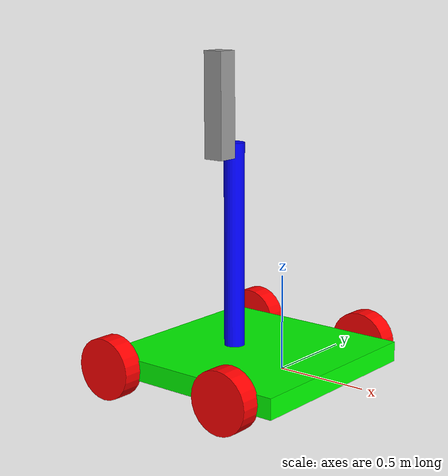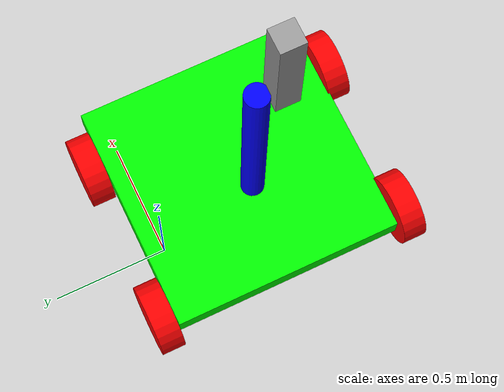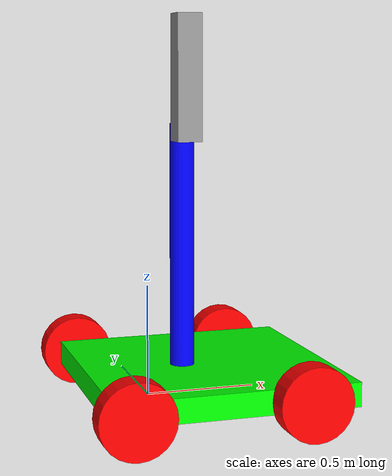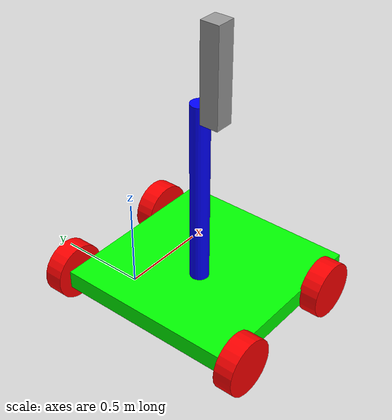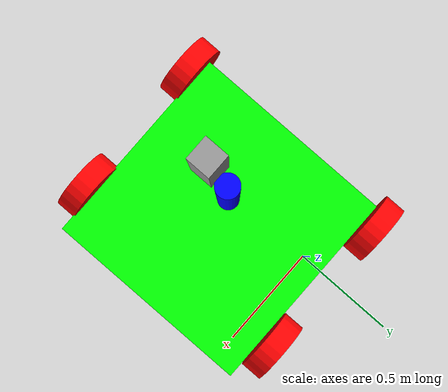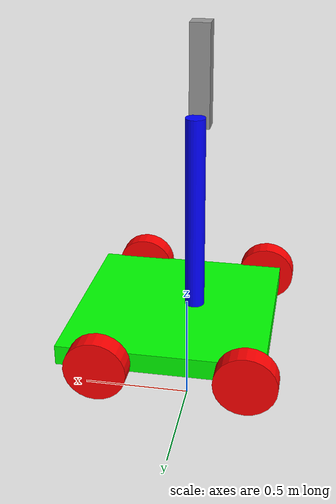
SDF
<?xml version='1.0'?>
<sdf version='1.6'>
  <model name='mybot'>
    <link name='link_2_clone_0'>
      <pose frame=''>0.401 0.150014 0.2 1.5707 -0 0</pose>
      <inertial>
        <mass>1</mass>
        <inertia>
          <ixx>0.145833</ixx>
          <ixy>0</ixy>
          <ixz>0</ixz>
          <iyy>0.145833</iyy>
          <iyz>0</iyz>
          <izz>0.125</izz>
        </inertia>
        <pose frame=''>0 0 0 0 -0 0</pose>
      </inertial>
      <self_collide>0</self_collide>
      <kinematic>0</kinematic>
      <visual name='visual'>
        <pose frame=''>0 0 0 0 -0 0</pose>
        <geometry>
          <cylinder>
            <radius>0.15</radius>
            <length>0.1</length>
          </cylinder>
        </geometry>
        <material>
          <lighting>1</lighting>
          <script>
            <uri>file://media/materials/scripts/gazebo.material</uri>
            <name>Gazebo/Grey</name>
          </script>
          <shader type='pixel'>
            <normal_map>__default__</normal_map>
          </shader>
          <ambient>0.3 0.3 0.3 1</ambient>
          <diffuse>1 0 0 1</diffuse>
          <specular>1 0 0 1</specular>
          <emissive>0 0 0 1</emissive>
        </material>
        <transparency>0</transparency>
        <cast_shadows>1</cast_shadows>
      </visual>
      <collision name='collision'>
        <laser_retro>0</laser_retro>
        <max_contacts>10</max_contacts>
        <pose frame=''>0 0 0 0 -0 0</pose>
        <geometry>
          <cylinder>
            <radius>0.15</radius>
            <length>0.1</length>
          </cylinder>
        </geometry>
        <surface>
          <friction>
            <ode>
              <mu>1</mu>
              <mu2>1</mu2>
              <fdir1>0 0 0</fdir1>
              <slip1>0</slip1>
              <slip2>0</slip2>
            </ode>
            <torsional>
              <coefficient>1</coefficient>
              <patch_radius>0</patch_radius>
              <surface_radius>0</surface_radius>
              <use_patch_radius>1</use_patch_radius>
              <ode>
                <slip>0</slip>
              </ode>
            </torsional>
          </friction>
          <bounce>
            <restitution_coefficient>0</restitution_coefficient>
            <threshold>1e+06</threshold>
          </bounce>
          <contact>
            <collide_without_contact>0</collide_without_contact>
            <collide_without_contact_bitmask>1</collide_without_contact_bitmask>
            <collide_bitmask>1</collide_bitmask>
            <ode>
              <soft_cfm>0</soft_cfm>
              <soft_erp>0.2</soft_erp>
              <kp>1e+13</kp>
              <kd>1</kd>
              <max_vel>0.01</max_vel>
              <min_depth>0</min_depth>
            </ode>
            <bullet>
              <split_impulse>1</split_impulse>
              <split_impulse_penetration_threshold>-0.01</split_impulse_penetration_threshold>
              <soft_cfm>0</soft_cfm>
              <soft_erp>0.2</soft_erp>
              <kp>1e+13</kp>
              <kd>1</kd>
            </bullet>
          </contact>
        </surface>
      </collision>
    </link>
    <link name='link_2_clone_0_clone'>
      <pose frame=''>-0.299 0.150014 0.2 1.5707 -0 0</pose>
      <inertial>
        <mass>1</mass>
        <inertia>
          <ixx>0.145833</ixx>
          <ixy>0</ixy>
          <ixz>0</ixz>
          <iyy>0.145833</iyy>
          <iyz>0</iyz>
          <izz>0.125</izz>
        </inertia>
        <pose frame=''>0 0 0 0 -0 0</pose>
      </inertial>
      <self_collide>0</self_collide>
      <kinematic>0</kinematic>
      <visual name='visual'>
        <pose frame=''>0 0 0 0 -0 0</pose>
        <geometry>
          <cylinder>
            <radius>0.15</radius>
            <length>0.1</length>
          </cylinder>
        </geometry>
        <material>
          <lighting>1</lighting>
          <script>
            <uri>file://media/materials/scripts/gazebo.material</uri>
            <name>Gazebo/Grey</name>
          </script>
          <shader type='pixel'>
            <normal_map>__default__</normal_map>
          </shader>
          <ambient>0.3 0.3 0.3 1</ambient>
          <diffuse>1 0 0 1</diffuse>
          <specular>1 0 0 1</specular>
          <emissive>0 0 0 1</emissive>
        </material>
        <transparency>0</transparency>
        <cast_shadows>1</cast_shadows>
      </visual>
      <collision name='collision'>
        <laser_retro>0</laser_retro>
        <max_contacts>10</max_contacts>
        <pose frame=''>0 0 0 0 -0 0</pose>
        <geometry>
          <cylinder>
            <radius>0.15</radius>
            <length>0.1</length>
          </cylinder>
        </geometry>
        <surface>
          <friction>
            <ode>
              <mu>1</mu>
              <mu2>1</mu2>
              <fdir1>0 0 0</fdir1>
              <slip1>0</slip1>
              <slip2>0</slip2>
            </ode>
            <torsional>
              <coefficient>1</coefficient>
              <patch_radius>0</patch_radius>
              <surface_radius>0</surface_radius>
              <use_patch_radius>1</use_patch_radius>
              <ode>
                <slip>0</slip>
              </ode>
            </torsional>
          </friction>
          <bounce>
            <restitution_coefficient>0</restitution_coefficient>
            <threshold>1e+06</threshold>
          </bounce>
          <contact>
            <collide_without_contact>0</collide_without_contact>
            <collide_without_contact_bitmask>1</collide_without_contact_bitmask>
            <collide_bitmask>1</collide_bitmask>
            <ode>
              <soft_cfm>0</soft_cfm>
              <soft_erp>0.2</soft_erp>
              <kp>1e+13</kp>
              <kd>1</kd>
              <max_vel>0.01</max_vel>
              <min_depth>0</min_depth>
            </ode>
            <bullet>
              <split_impulse>1</split_impulse>
              <split_impulse_penetration_threshold>-0.01</split_impulse_penetration_threshold>
              <soft_cfm>0</soft_cfm>
              <soft_erp>0.2</soft_erp>
              <kp>1e+13</kp>
              <kd>1</kd>
            </bullet>
          </contact>
        </surface>
      </collision>
    </link>
    <link name='link_2_clone_0_clone_0'>
      <pose frame=''>-0.299 -0.950015 0.2 1.5707 -0 0</pose>
      <inertial>
        <mass>1</mass>
        <inertia>
          <ixx>0.145833</ixx>
          <ixy>0</ixy>
          <ixz>0</ixz>
          <iyy>0.145833</iyy>
          <iyz>0</iyz>
          <izz>0.125</izz>
        </inertia>
        <pose frame=''>0 0 0 0 -0 0</pose>
      </inertial>
      <self_collide>0</self_collide>
      <kinematic>0</kinematic>
      <visual name='visual'>
        <pose frame=''>0 0 0 0 -0 0</pose>
        <geometry>
          <cylinder>
            <radius>0.15</radius>
            <length>0.1</length>
          </cylinder>
        </geometry>
        <material>
          <lighting>1</lighting>
          <script>
            <uri>file://media/materials/scripts/gazebo.material</uri>
            <name>Gazebo/Grey</name>
          </script>
          <shader type='pixel'>
            <normal_map>__default__</normal_map>
          </shader>
          <ambient>0.3 0.3 0.3 1</ambient>
          <diffuse>1 0 0 1</diffuse>
          <specular>1 0 0 1</specular>
          <emissive>0 0 0 1</emissive>
        </material>
        <transparency>0</transparency>
        <cast_shadows>1</cast_shadows>
      </visual>
      <collision name='collision'>
        <laser_retro>0</laser_retro>
        <max_contacts>10</max_contacts>
        <pose frame=''>0 0 0 0 -0 0</pose>
        <geometry>
          <cylinder>
            <radius>0.15</radius>
            <length>0.1</length>
          </cylinder>
        </geometry>
        <surface>
          <friction>
            <ode>
              <mu>1</mu>
              <mu2>1</mu2>
              <fdir1>0 0 0</fdir1>
              <slip1>0</slip1>
              <slip2>0</slip2>
            </ode>
            <torsional>
              <coefficient>1</coefficient>
              <patch_radius>0</patch_radius>
              <surface_radius>0</surface_radius>
              <use_patch_radius>1</use_patch_radius>
              <ode>
                <slip>0</slip>
              </ode>
            </torsional>
          </friction>
          <bounce>
            <restitution_coefficient>0</restitution_coefficient>
            <threshold>1e+06</threshold>
          </bounce>
          <contact>
            <collide_without_contact>0</collide_without_contact>
            <collide_without_contact_bitmask>1</collide_without_contact_bitmask>
            <collide_bitmask>1</collide_bitmask>
            <ode>
              <soft_cfm>0</soft_cfm>
              <soft_erp>0.2</soft_erp>
              <kp>1e+13</kp>
              <kd>1</kd>
              <max_vel>0.01</max_vel>
              <min_depth>0</min_depth>
            </ode>
            <bullet>
              <split_impulse>1</split_impulse>
              <split_impulse_penetration_threshold>-0.01</split_impulse_penetration_threshold>
              <soft_cfm>0</soft_cfm>
              <soft_erp>0.2</soft_erp>
              <kp>1e+13</kp>
              <kd>1</kd>
            </bullet>
          </contact>
        </surface>
      </collision>
    </link>
    <link name='link_2_clone_0_clone_1'>
      <pose frame=''>0.401 -0.950015 0.2 1.5707 -0 0</pose>
      <inertial>
        <mass>1</mass>
        <inertia>
          <ixx>0.145833</ixx>
          <ixy>0</ixy>
          <ixz>0</ixz>
          <iyy>0.145833</iyy>
          <iyz>0</iyz>
          <izz>0.125</izz>
        </inertia>
        <pose frame=''>0 0 0 0 -0 0</pose>
      </inertial>
      <self_collide>0</self_collide>
      <kinematic>0</kinematic>
      <visual name='visual'>
        <pose frame=''>0 0 0 0 -0 0</pose>
        <geometry>
          <cylinder>
            <radius>0.15</radius>
            <length>0.1</length>
          </cylinder>
        </geometry>
        <material>
          <lighting>1</lighting>
          <script>
            <uri>file://media/materials/scripts/gazebo.material</uri>
            <name>Gazebo/Grey</name>
          </script>
          <shader type='pixel'>
            <normal_map>__default__</normal_map>
          </shader>
          <ambient>0.3 0.3 0.3 1</ambient>
          <diffuse>1 0 0 1</diffuse>
          <specular>1 0 0 1</specular>
          <emissive>0 0 0 1</emissive>
        </material>
        <transparency>0</transparency>
        <cast_shadows>1</cast_shadows>
      </visual>
      <collision name='collision'>
        <laser_retro>0</laser_retro>
        <max_contacts>10</max_contacts>
        <pose frame=''>0 0 0 0 -0 0</pose>
        <geometry>
          <cylinder>
            <radius>0.15</radius>
            <length>0.1</length>
          </cylinder>
        </geometry>
        <surface>
          <friction>
            <ode>
              <mu>1</mu>
              <mu2>1</mu2>
              <fdir1>0 0 0</fdir1>
              <slip1>0</slip1>
              <slip2>0</slip2>
            </ode>
            <torsional>
              <coefficient>1</coefficient>
              <patch_radius>0</patch_radius>
              <surface_radius>0</surface_radius>
              <use_patch_radius>1</use_patch_radius>
              <ode>
                <slip>0</slip>
              </ode>
            </torsional>
          </friction>
          <bounce>
            <restitution_coefficient>0</restitution_coefficient>
            <threshold>1e+06</threshold>
          </bounce>
          <contact>
            <collide_without_contact>0</collide_without_contact>
            <collide_without_contact_bitmask>1</collide_without_contact_bitmask>
            <collide_bitmask>1</collide_bitmask>
            <ode>
              <soft_cfm>0</soft_cfm>
              <soft_erp>0.2</soft_erp>
              <kp>1e+13</kp>
              <kd>1</kd>
              <max_vel>0.01</max_vel>
              <min_depth>0</min_depth>
            </ode>
            <bullet>
              <split_impulse>1</split_impulse>
              <split_impulse_penetration_threshold>-0.01</split_impulse_penetration_threshold>
              <soft_cfm>0</soft_cfm>
              <soft_erp>0.2</soft_erp>
              <kp>1e+13</kp>
              <kd>1</kd>
            </bullet>
          </contact>
        </surface>
      </collision>
    </link>
    <link name='link_5'>
      <pose frame=''>0.033539 -0.431162 0.743982 0 -0 0</pose>
      <inertial>
        <mass>1</mass>
        <inertia>
          <ixx>0.145833</ixx>
          <ixy>0</ixy>
          <ixz>0</ixz>
          <iyy>0.145833</iyy>
          <iyz>0</iyz>
          <izz>0.125</izz>
        </inertia>
        <pose frame=''>0 0 0 0 -0 0</pose>
      </inertial>
      <self_collide>0</self_collide>
      <kinematic>0</kinematic>
      <visual name='visual'>
        <pose frame=''>0 0 0 0 -0 0</pose>
        <geometry>
          <cylinder>
            <radius>0.05</radius>
            <length>1</length>
          </cylinder>
        </geometry>
        <material>
          <lighting>1</lighting>
          <script>
            <uri>file://media/materials/scripts/gazebo.material</uri>
            <name>Gazebo/Grey</name>
          </script>
          <shader type='pixel'>
            <normal_map>__default__</normal_map>
          </shader>
          <ambient>0 0 1 1</ambient>
          <diffuse>0 0 1 1</diffuse>
          <specular>0 0 1 1</specular>
          <emissive>0 0 0 1</emissive>
        </material>
        <transparency>0</transparency>
        <cast_shadows>1</cast_shadows>
      </visual>
      <collision name='collision'>
        <laser_retro>0</laser_retro>
        <max_contacts>10</max_contacts>
        <pose frame=''>0 0 0 0 -0 0</pose>
        <geometry>
          <cylinder>
            <radius>0.05</radius>
            <length>1</length>
          </cylinder>
        </geometry>
        <surface>
          <friction>
            <ode>
              <mu>1</mu>
              <mu2>1</mu2>
              <fdir1>0 0 0</fdir1>
              <slip1>0</slip1>
              <slip2>0</slip2>
            </ode>
            <torsional>
              <coefficient>1</coefficient>
              <patch_radius>0</patch_radius>
              <surface_radius>0</surface_radius>
              <use_patch_radius>1</use_patch_radius>
              <ode>
                <slip>0</slip>
              </ode>
            </torsional>
          </friction>
          <bounce>
            <restitution_coefficient>0</restitution_coefficient>
            <threshold>1e+06</threshold>
          </bounce>
          <contact>
            <collide_without_contact>0</collide_without_contact>
            <collide_without_contact_bitmask>1</collide_without_contact_bitmask>
            <collide_bitmask>1</collide_bitmask>
            <ode>
              <soft_cfm>0</soft_cfm>
              <soft_erp>0.2</soft_erp>
              <kp>1e+13</kp>
              <kd>1</kd>
              <max_vel>0.01</max_vel>
              <min_depth>0</min_depth>
            </ode>
            <bullet>
              <split_impulse>1</split_impulse>
              <split_impulse_penetration_threshold>-0.01</split_impulse_penetration_threshold>
              <soft_cfm>0</soft_cfm>
              <soft_erp>0.2</soft_erp>
              <kp>1e+13</kp>
              <kd>1</kd>
            </bullet>
          </contact>
        </surface>
      </collision>
    </link>
    <link name='link_6'>
      <pose frame=''>0.122542 -0.40681 0.2 0 -0 0</pose>
      <inertial>
        <mass>1</mass>
        <inertia>
          <ixx>0.166667</ixx>
          <ixy>0</ixy>
          <ixz>0</ixz>
          <iyy>0.166667</iyy>
          <iyz>0</iyz>
          <izz>0.166667</izz>
        </inertia>
        <pose frame=''>0 0 0 0 -0 0</pose>
      </inertial>
      <self_collide>0</self_collide>
      <kinematic>0</kinematic>
      <visual name='visual'>
        <pose frame=''>0 0 0 0 -0 0</pose>
        <geometry>
          <box>
            <size>1 1 0.1</size>
          </box>
        </geometry>
        <material>
          <lighting>1</lighting>
          <script>
            <uri>file://media/materials/scripts/gazebo.material</uri>
            <name>Gazebo/Grey</name>
          </script>
          <shader type='pixel'>
            <normal_map>__default__</normal_map>
          </shader>
          <ambient>0 1 0 1</ambient>
          <diffuse>0 1 0 1</diffuse>
          <specular>0.01 0.01 0.01 1</specular>
          <emissive>0 0 0 1</emissive>
        </material>
        <transparency>0</transparency>
        <cast_shadows>1</cast_shadows>
      </visual>
      <collision name='collision'>
        <laser_retro>0</laser_retro>
        <max_contacts>10</max_contacts>
        <pose frame=''>0 0 0 0 -0 0</pose>
        <geometry>
          <box>
            <size>1 1 0.1</size>
          </box>
        </geometry>
        <surface>
          <friction>
            <ode>
              <mu>1</mu>
              <mu2>1</mu2>
              <fdir1>0 0 0</fdir1>
              <slip1>0</slip1>
              <slip2>0</slip2>
            </ode>
            <torsional>
              <coefficient>1</coefficient>
              <patch_radius>0</patch_radius>
              <surface_radius>0</surface_radius>
              <use_patch_radius>1</use_patch_radius>
              <ode>
                <slip>0</slip>
              </ode>
            </torsional>
          </friction>
          <bounce>
            <restitution_coefficient>0</restitution_coefficient>
            <threshold>1e+06</threshold>
          </bounce>
          <contact>
            <collide_without_contact>0</collide_without_contact>
            <collide_without_contact_bitmask>1</collide_without_contact_bitmask>
            <collide_bitmask>1</collide_bitmask>
            <ode>
              <soft_cfm>0</soft_cfm>
              <soft_erp>0.2</soft_erp>
              <kp>1e+13</kp>
              <kd>1</kd>
              <max_vel>0.01</max_vel>
              <min_depth>0</min_depth>
            </ode>
            <bullet>
              <split_impulse>1</split_impulse>
              <split_impulse_penetration_threshold>-0.01</split_impulse_penetration_threshold>
              <soft_cfm>0</soft_cfm>
              <soft_erp>0.2</soft_erp>
              <kp>1e+13</kp>
              <kd>1</kd>
            </bullet>
          </contact>
        </surface>
      </collision>
    </link>
    <link name='link_6_0'>
      <pose frame=''>0.0239 -0.525735 1.42534 0 -0 0</pose>
      <inertial>
        <mass>1</mass>
        <inertia>
          <ixx>0.166667</ixx>
          <ixy>0</ixy>
          <ixz>0</ixz>
          <iyy>0.166667</iyy>
          <iyz>0</iyz>
          <izz>0.166667</izz>
        </inertia>
        <pose frame=''>0 0 0 0 -0 0</pose>
      </inertial>
      <self_collide>0</self_collide>
      <kinematic>0</kinematic>
      <visual name='visual'>
        <pose frame=''>0 0 0 0 -0 0</pose>
        <geometry>
          <box>
            <size>0.1 0.1 0.5</size>
          </box>
        </geometry>
        <material>
          <lighting>1</lighting>
          <script>
            <uri>file://media/materials/scripts/gazebo.material</uri>
            <name>Gazebo/Grey</name>
          </script>
          <shader type='pixel'>
            <normal_map>__default__</normal_map>
          </shader>
          <ambient>0.3 0.3 0.3 1</ambient>
          <diffuse>0.7 0.7 0.7 1</diffuse>
          <specular>0.01 0.01 0.01 1</specular>
          <emissive>0 0 0 1</emissive>
        </material>
        <transparency>0</transparency>
        <cast_shadows>1</cast_shadows>
      </visual>
      <collision name='collision'>
        <laser_retro>0</laser_retro>
        <max_contacts>10</max_contacts>
        <pose frame=''>0 0 0 0 -0 0</pose>
        <geometry>
          <box>
            <size>0.1 0.1 0.5</size>
          </box>
        </geometry>
        <surface>
          <friction>
            <ode>
              <mu>1</mu>
              <mu2>1</mu2>
              <fdir1>0 0 0</fdir1>
              <slip1>0</slip1>
              <slip2>0</slip2>
            </ode>
            <torsional>
              <coefficient>1</coefficient>
              <patch_radius>0</patch_radius>
              <surface_radius>0</surface_radius>
              <use_patch_radius>1</use_patch_radius>
              <ode>
                <slip>0</slip>
              </ode>
            </torsional>
          </friction>
          <bounce>
            <restitution_coefficient>0</restitution_coefficient>
            <threshold>1e+06</threshold>
          </bounce>
          <contact>
            <collide_without_contact>0</collide_without_contact>
            <collide_without_contact_bitmask>1</collide_without_contact_bitmask>
            <collide_bitmask>1</collide_bitmask>
            <ode>
              <soft_cfm>0</soft_cfm>
              <soft_erp>0.2</soft_erp>
              <kp>1e+13</kp>
              <kd>1</kd>
              <max_vel>0.01</max_vel>
              <min_depth>0</min_depth>
            </ode>
            <bullet>
              <split_impulse>1</split_impulse>
              <split_impulse_penetration_threshold>-0.01</split_impulse_penetration_threshold>
              <soft_cfm>0</soft_cfm>
              <soft_erp>0.2</soft_erp>
              <kp>1e+13</kp>
              <kd>1</kd>
            </bullet>
          </contact>
        </surface>
      </collision>
    </link>
    <joint name='link_5_JOINT_6' type='revolute'>
      <parent>link_5</parent>
      <child>link_6_0</child>
      <pose frame=''>0 0 0 0 -0 0</pose>
      <axis>
        <xyz>0 1 0</xyz>
        <use_parent_model_frame>0</use_parent_model_frame>
        <limit>
          <lower>-1.79769e+308</lower>
          <upper>1.79769e+308</upper>
          <effort>-1</effort>
          <velocity>-1</velocity>
        </limit>
        <dynamics>
          <spring_reference>0</spring_reference>
          <spring_stiffness>0</spring_stiffness>
          <damping>0</damping>
          <friction>0</friction>
        </dynamics>
      </axis>
      <physics>
        <ode>
          <limit>
            <cfm>0</cfm>
            <erp>0.2</erp>
          </limit>
          <suspension>
            <cfm>0</cfm>
            <erp>0.2</erp>
          </suspension>
        </ode>
      </physics>
    </joint>
    <joint name='link_6_JOINT_0' type='revolute'>
      <parent>link_6</parent>
      <child>link_2_clone_0_clone_1</child>
      <pose frame=''>0 0 0 0 -0 0</pose>
      <axis>
        <xyz>0 0 1</xyz>
        <use_parent_model_frame>0</use_parent_model_frame>
        <limit>
          <lower>-1.79769e+308</lower>
          <upper>1.79769e+308</upper>
          <effort>-1</effort>
          <velocity>-1</velocity>
        </limit>
        <dynamics>
          <spring_reference>0</spring_reference>
          <spring_stiffness>0</spring_stiffness>
          <damping>0</damping>
          <friction>0</friction>
        </dynamics>
      </axis>
      <physics>
        <ode>
          <limit>
            <cfm>0</cfm>
            <erp>0.2</erp>
          </limit>
          <suspension>
            <cfm>0</cfm>
            <erp>0.2</erp>
          </suspension>
        </ode>
      </physics>
    </joint>
    <joint name='link_6_JOINT_1' type='revolute'>
      <parent>link_6</parent>
      <child>link_2_clone_0_clone_0</child>
      <pose frame=''>0 0 0 0 -0 0</pose>
      <axis>
        <xyz>0 0 1</xyz>
        <use_parent_model_frame>0</use_parent_model_frame>
        <limit>
          <lower>-1.79769e+308</lower>
          <upper>1.79769e+308</upper>
          <effort>-1</effort>
          <velocity>-1</velocity>
        </limit>
        <dynamics>
          <spring_reference>0</spring_reference>
          <spring_stiffness>0</spring_stiffness>
          <damping>0</damping>
          <friction>0</friction>
        </dynamics>
      </axis>
      <physics>
        <ode>
          <limit>
            <cfm>0</cfm>
            <erp>0.2</erp>
          </limit>
          <suspension>
            <cfm>0</cfm>
            <erp>0.2</erp>
          </suspension>
        </ode>
      </physics>
    </joint>
    <joint name='link_6_JOINT_2' type='revolute'>
      <parent>link_6</parent>
      <child>link_2_clone_0_clone</child>
      <pose frame=''>0 0 0 0 -0 0</pose>
      <axis>
        <xyz>0 0 1</xyz>
        <use_parent_model_frame>0</use_parent_model_frame>
        <limit>
          <lower>-1.79769e+308</lower>
          <upper>1.79769e+308</upper>
          <effort>-1</effort>
          <velocity>-1</velocity>
        </limit>
        <dynamics>
          <spring_reference>0</spring_reference>
          <spring_stiffness>0</spring_stiffness>
          <damping>0</damping>
          <friction>0</friction>
        </dynamics>
      </axis>
      <physics>
        <ode>
          <limit>
            <cfm>0</cfm>
            <erp>0.2</erp>
          </limit>
          <suspension>
            <cfm>0</cfm>
            <erp>0.2</erp>
          </suspension>
        </ode>
      </physics>
    </joint>
    <joint name='link_6_JOINT_3' type='revolute'>
      <parent>link_6</parent>
      <child>link_2_clone_0</child>
      <pose frame=''>0 0 0 0 -0 0</pose>
      <axis>
        <xyz>0 0 1</xyz>
        <use_parent_model_frame>0</use_parent_model_frame>
        <limit>
          <lower>-1.79769e+308</lower>
          <upper>1.79769e+308</upper>
          <effort>-1</effort>
          <velocity>-1</velocity>
        </limit>
        <dynamics>
          <spring_reference>0</spring_reference>
          <spring_stiffness>0</spring_stiffness>
          <damping>0</damping>
          <friction>0</friction>
        </dynamics>
      </axis>
      <physics>
        <ode>
          <limit>
            <cfm>0</cfm>
            <erp>0.2</erp>
          </limit>
          <suspension>
            <cfm>0</cfm>
            <erp>0.2</erp>
          </suspension>
        </ode>
      </physics>
    </joint>
    <joint name='link_6_JOINT_5' type='fixed'>
      <parent>link_6</parent>
      <child>link_5</child>
      <pose frame=''>0 0 0 0 -0 0</pose>
      <physics>
        <ode>
          <limit>
            <cfm>0</cfm>
            <erp>0.2</erp>
          </limit>
          <suspension>
            <cfm>0</cfm>
            <erp>0.2</erp>
          </suspension>
        </ode>
      </physics>
    </joint>
    <static>0</static>
    <allow_auto_disable>1</allow_auto_disable>
  </model>
</sdf>
